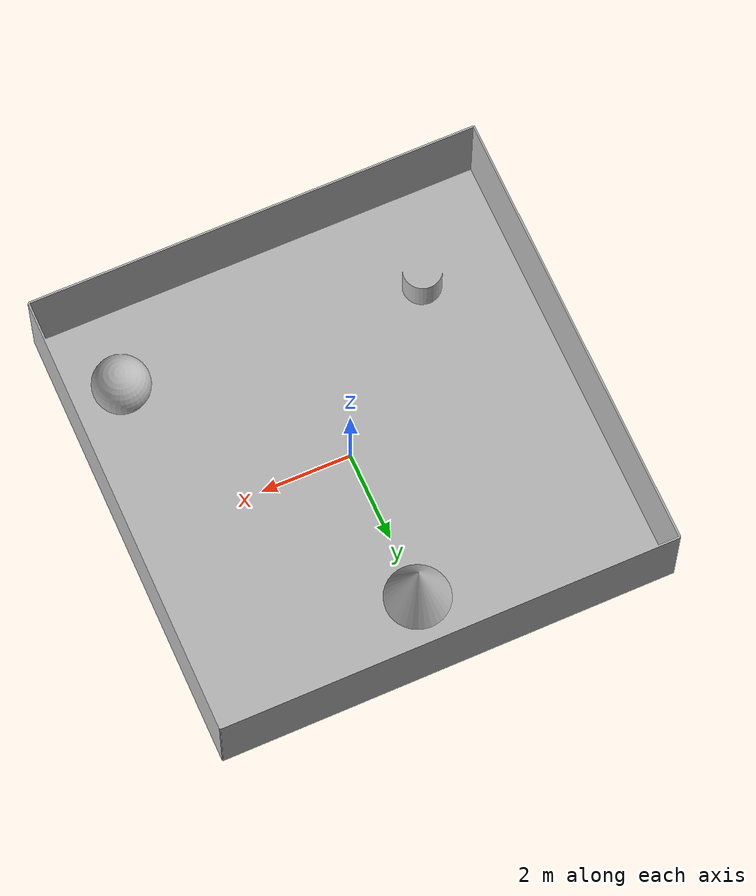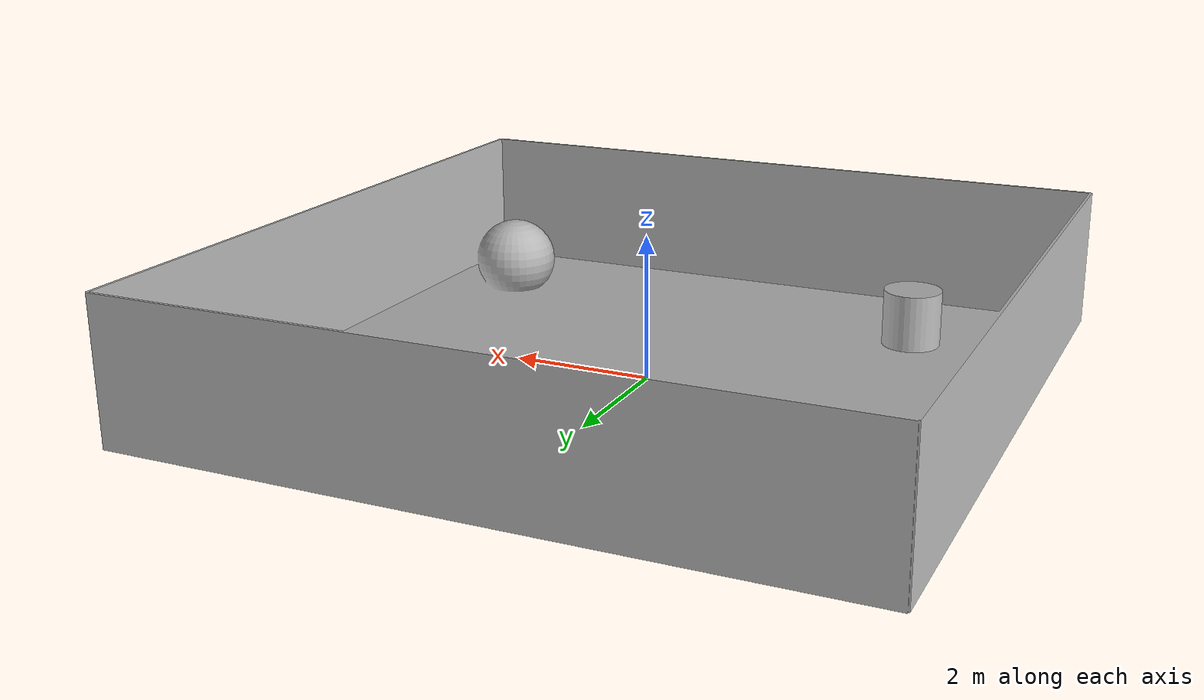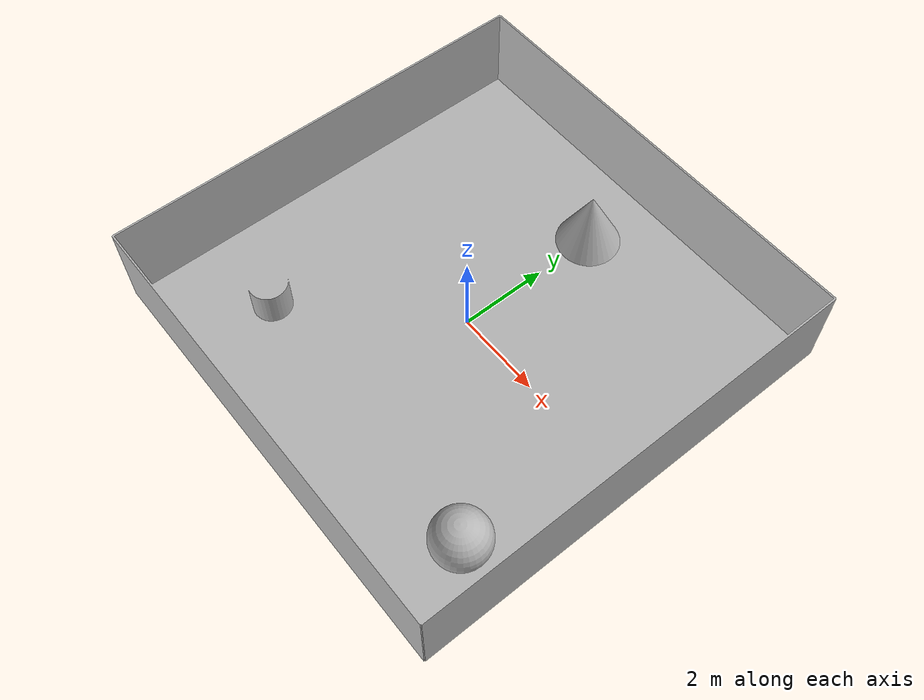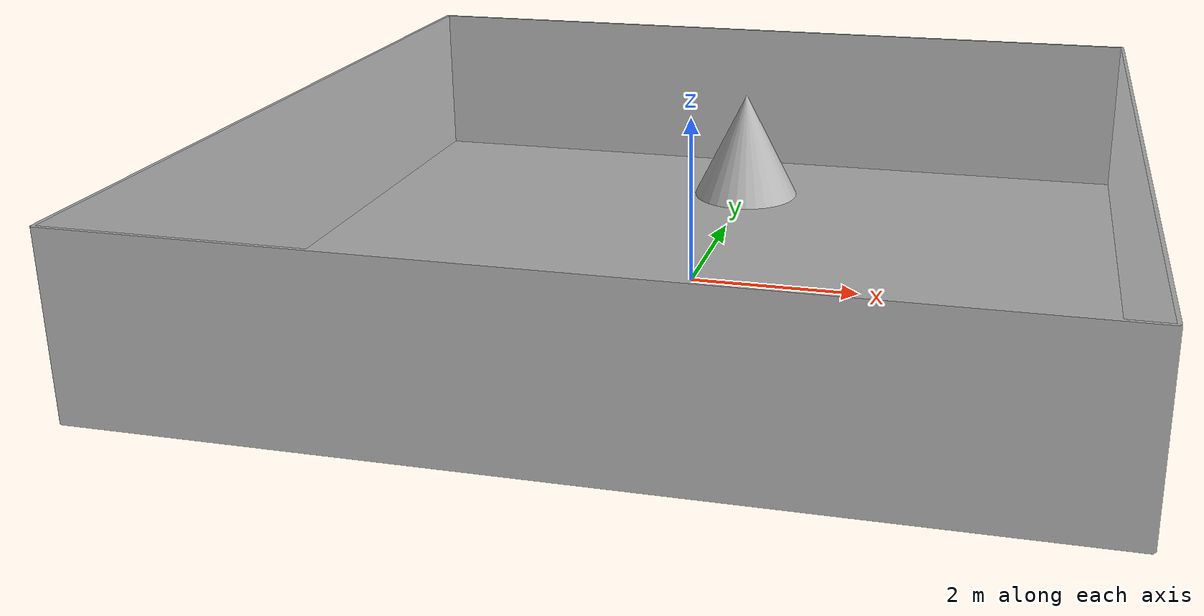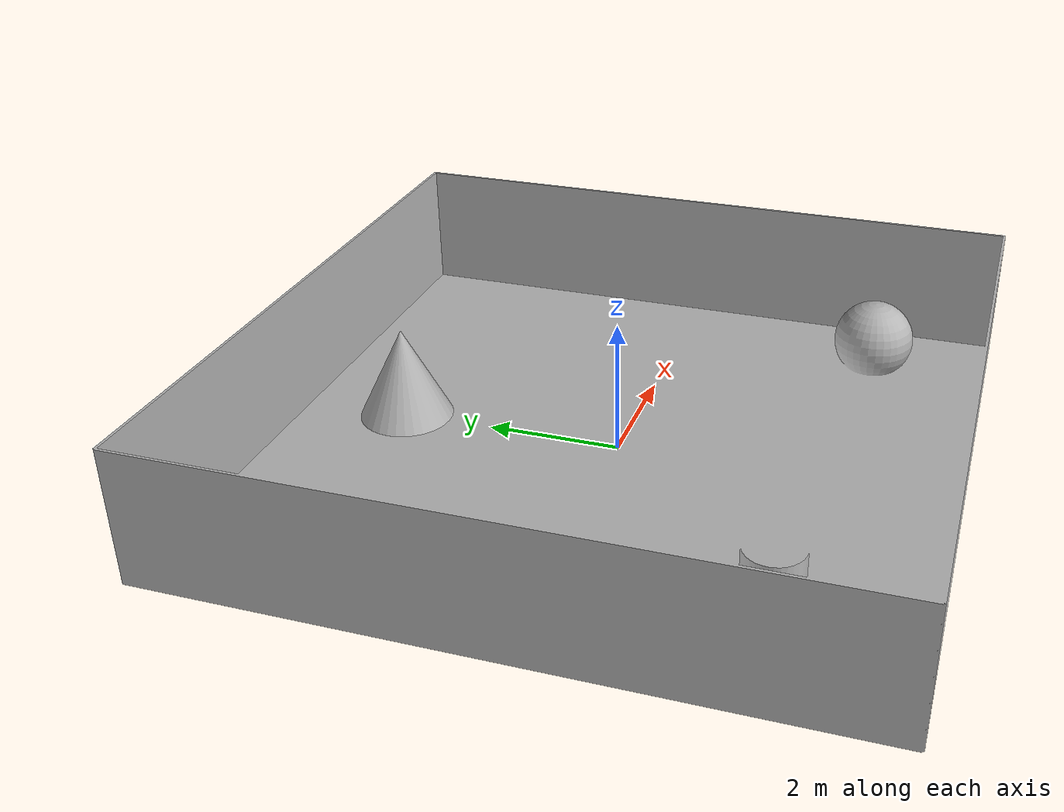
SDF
<?xml version="1.0" ?>
<sdf version='1.4'>
  <model name="simple_env2">
      <static>1</static>
        <link name='link_1'>
            <visual name='visual'>
            <pose frame=''>0 0 0 0 0 0</pose>
            <geometry>
            <mesh>
                <uri>model://simple_env2/meshes/simple_env.dae</uri>
                <scale>1 1 1</scale>
            </mesh>
            </geometry>
            <cast_shadows>0</cast_shadows>
            <transparency>0</transparency>
        </visual>

        <collision name='collision'>
            <laser_retro>0</laser_retro>
            <pose frame=''>0 0 0 0 0 0</pose>
            <geometry>
            <mesh>
                <uri>model://simple_env2/meshes/simple_env.stl</uri>
                <scale>1 1 1</scale>
            </mesh>
            </geometry>
        </collision>
        </link>
  </model>
</sdf>
